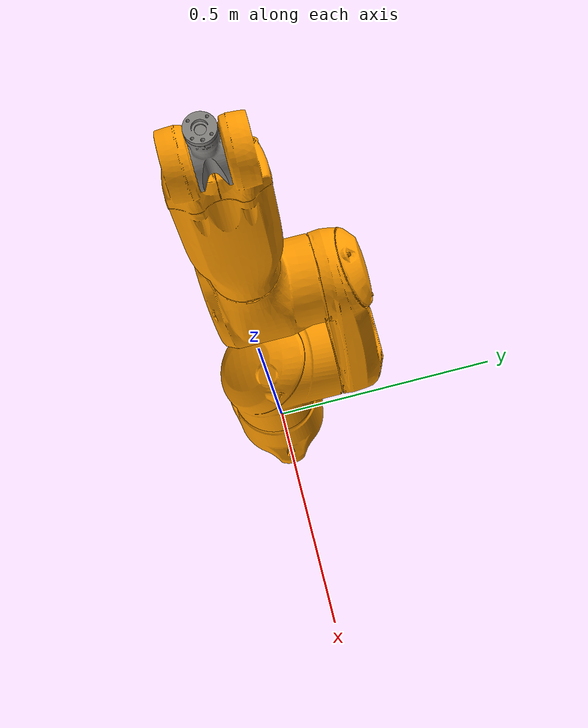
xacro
<?xml version="1.0"?>
<robot xmlns:xacro="http://www.ros.org/wiki/xacro" name="staubli_tx2_60l">
    <xacro:arg name="initial_positions_file" default="initial_positions.yaml" />

    <!-- Import staubli_tx2_60l urdf file -->
    <xacro:include filename="$(find staubli_tx2_60_support)/urdf/tx2_60l.urdf" />

    <!-- Import control_xacro -->
    <xacro:include filename="staubli_tx2_60l.ros2_control.xacro" />

    <xacro:staubli_tx2_60l_ros2_control name="FakeSystem" initial_positions_file="$(arg initial_positions_file)" ros2_control_hardware_type="mock_components"/>

</robot>

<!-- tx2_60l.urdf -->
<!-- |    This document was autogenerated by xacro from tx2_60l.xacro                  | -->
<!-- |    EDITING THIS FILE BY HAND IS NOT RECOMMENDED                                 | -->
<robot name="staubli_tx2_60l">
  <!-- colours based on RAL values supplied by Staubli -->
  <!-- all RAL colours converted using http://www.visual-graphics.de/en/customer-care/ral-colours -->
  <!-- default colours for robots -->
  <!-- links: main serial chain -->
  <link name="base_link">
    <visual>
      <origin rpy="0 0 0" xyz="0 0 0"/>
      <geometry>
        <mesh filename="package://staubli_tx2_60_support/meshes/tx2_60/visual/base_link.stl"/>
      </geometry>
      <material name="">
        <color rgba="1.0 0.6078431372549019 0.0 1.0"/>
      </material>
    </visual>
    <collision>
      <origin rpy="0 0 0" xyz="0 0 0"/>
      <geometry>
        <mesh filename="package://staubli_tx2_60_support/meshes/tx2_60/collision/base_link.stl"/>
      </geometry>
    </collision>
  </link>
  <link name="link_1">
    <visual>
      <origin rpy="0 0 0" xyz="0 0 0"/>
      <geometry>
        <mesh filename="package://staubli_tx2_60_support/meshes/tx2_60/visual/link_1.stl"/>
      </geometry>
      <material name="">
        <color rgba="1.0 0.6078431372549019 0.0 1.0"/>
      </material>
    </visual>
    <collision>
      <origin rpy="0 0 0" xyz="0 0 0"/>
      <geometry>
        <mesh filename="package://staubli_tx2_60_support/meshes/tx2_60/collision/link_1.stl"/>
      </geometry>
    </collision>
  </link>
  <link name="link_2">
    <visual>
      <origin rpy="0 0 0" xyz="0 0 0"/>
      <geometry>
        <mesh filename="package://staubli_tx2_60_support/meshes/tx2_60l/visual/link_2.stl"/>
      </geometry>
      <material name="">
        <color rgba="1.0 0.6078431372549019 0.0 1.0"/>
      </material>
    </visual>
    <collision>
      <origin rpy="0 0 0" xyz="0 0 0"/>
      <geometry>
        <mesh filename="package://staubli_tx2_60_support/meshes/tx2_60l/collision/link_2.stl"/>
      </geometry>
    </collision>
  </link>
  <link name="link_3">
    <visual>
      <origin rpy="0 0 0" xyz="0 0 0"/>
      <geometry>
        <mesh filename="package://staubli_tx2_60_support/meshes/tx2_60/visual/link_3.stl"/>
      </geometry>
      <material name="">
        <color rgba="1.0 0.6078431372549019 0.0 1.0"/>
      </material>
    </visual>
    <collision>
      <origin rpy="0 0 0" xyz="0 0 0"/>
      <geometry>
        <mesh filename="package://staubli_tx2_60_support/meshes/tx2_60/collision/link_3.stl"/>
      </geometry>
    </collision>
  </link>
  <link name="link_4">
    <visual>
      <origin rpy="0 0 0" xyz="0 0 0"/>
      <geometry>
        <mesh filename="package://staubli_tx2_60_support/meshes/tx2_60l/visual/link_4.stl"/>
      </geometry>
      <material name="">
        <color rgba="1.0 0.6078431372549019 0.0 1.0"/>
      </material>
    </visual>
    <collision>
      <origin rpy="0 0 0" xyz="0 0 0"/>
      <geometry>
        <mesh filename="package://staubli_tx2_60_support/meshes/tx2_60l/collision/link_4.stl"/>
      </geometry>
    </collision>
  </link>
  <link name="link_5">
    <visual>
      <origin rpy="0 0 0" xyz="0 0 0"/>
      <geometry>
        <mesh filename="package://staubli_tx60_support/meshes/tx60/visual/link_5.stl"/>
      </geometry>
      <material name="">
        <color rgba="0.5294117647058824 0.5215686274509804 0.5058823529411764 1.0"/>
      </material>
    </visual>
    <collision>
      <origin rpy="0 0 0" xyz="0 0 0"/>
      <geometry>
        <mesh filename="package://staubli_tx60_support/meshes/tx60/collision/link_5.stl"/>
      </geometry>
    </collision>
  </link>
  <link name="link_6">
    <visual>
      <origin rpy="0 0 0" xyz="0 0 0"/>
      <geometry>
        <mesh filename="package://staubli_tx60_support/meshes/tx60/visual/link_6.stl"/>
      </geometry>
      <material name="">
        <color rgba="0.5294117647058824 0.5215686274509804 0.5058823529411764 1.0"/>
      </material>
    </visual>
    <collision>
      <origin rpy="0 0 0" xyz="0 0 0"/>
      <geometry>
        <mesh filename="package://staubli_tx60_support/meshes/tx60/collision/link_6.stl"/>
      </geometry>
    </collision>
  </link>
  <!-- joints: main serial chain -->
  <joint name="joint_1" type="revolute">
    <origin rpy="0 0 0" xyz="0 0 0.375"/>
    <parent link="base_link"/>
    <child link="link_1"/>
    <axis xyz="0 0 1"/>
    <!-- from Staubli instruction manual:
      (1) effort limit = 126 Nm if floor mounted
      (2) effort limit = 40 Nm if wall mounted -->
    <!-- nominal velocity limits are used -->
    <limit effort="126.0" lower="-3.141592653589793" upper="3.141592653589793" velocity="7.592182246175334"/>
  </joint>
  <joint name="joint_2" type="revolute">
    <origin rpy="0 0 0" xyz="0 0 0"/>
    <parent link="link_1"/>
    <child link="link_2"/>
    <axis xyz="0 1 0"/>
    <!-- nominal velocity limits are used -->
    <limit effort="47.0" lower="-2.2252947962927703" upper="2.2252947962927703" velocity="6.719517620178169"/>
  </joint>
  <joint name="joint_3" type="revolute">
    <origin rpy="0 0 0" xyz="0 0.02 0.40"/>
    <parent link="link_2"/>
    <child link="link_3"/>
    <axis xyz="0 1 0"/>
    <!-- nominal velocity limits are used -->
    <limit effort="32.0" lower="-2.6616271092913526" upper="2.6616271092913526" velocity="8.726646259971648"/>
  </joint>
  <joint name="joint_4" type="revolute">
    <origin rpy="0 0 0" xyz="0 0 0"/>
    <parent link="link_3"/>
    <child link="link_4"/>
    <axis xyz="0 0 1"/>
    <!-- nominal velocity limits are used -->
    <limit effort="7.0" lower="-4.71238898038469" upper="4.71238898038469" velocity="17.36602605734358"/>
  </joint>
  <joint name="joint_5" type="revolute">
    <origin rpy="0 0 0" xyz="0 0 0.45"/>
    <parent link="link_4"/>
    <child link="link_5"/>
    <axis xyz="0 1 0"/>
    <!-- nominal velocity limits are used -->
    <limit effort="8.0" lower="-2.111848394913139" upper="2.3125612588924866" velocity="18.58775653373961"/>
  </joint>
  <joint name="joint_6" type="revolute">
    <origin rpy="0 0 0" xyz="0 0 0.07"/>
    <parent link="link_5"/>
    <child link="link_6"/>
    <axis xyz="0 0 1"/>
    <!-- nominal velocity limits are used -->
    <limit effort="2.0" lower="-4.71238898038469" upper="4.71238898038469" velocity="25.220007691318063"/>
  </joint>
  <!-- ROS-Industrial 'base' frame: base_link to Staubli World Coordinates transform -->
  <link name="base"/>
  <joint name="base_link-base" type="fixed">
    <origin rpy="0 0 0" xyz="0 0 0.375"/>
    <parent link="base_link"/>
    <child link="base"/>
  </joint>
  <!-- ROS-Industrial 'flange' frame: attachment point for EEF models -->
  <link name="flange"/>
  <joint name="joint_6-flange" type="fixed">
    <origin rpy="0 -1.5707963267948966 0" xyz="0 0 0"/>
    <parent link="link_6"/>
    <child link="flange"/>
  </joint>
  <!-- ROS-Industrial 'tool0' frame: all-zeros tool frame -->
  <link name="tool0"/>
  <joint name="flange-tool0" type="fixed">
    <origin rpy="0 1.5707963267948966 0" xyz="0 0 0"/>
    <parent link="flange"/>
    <child link="tool0"/>
  </joint>
</robot>
